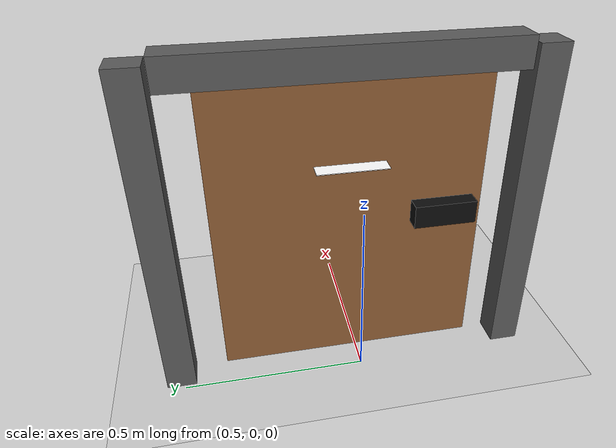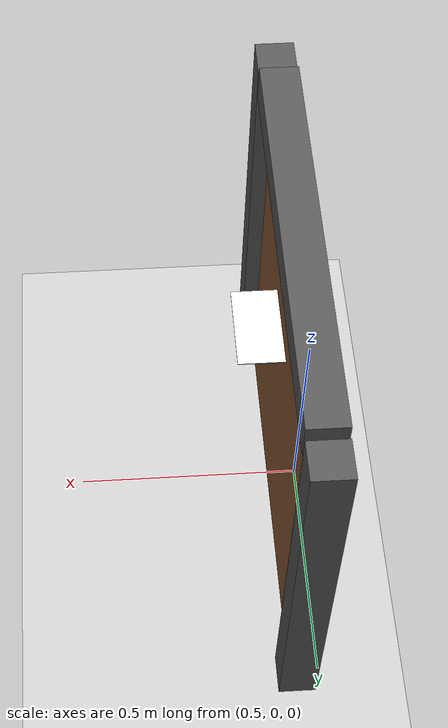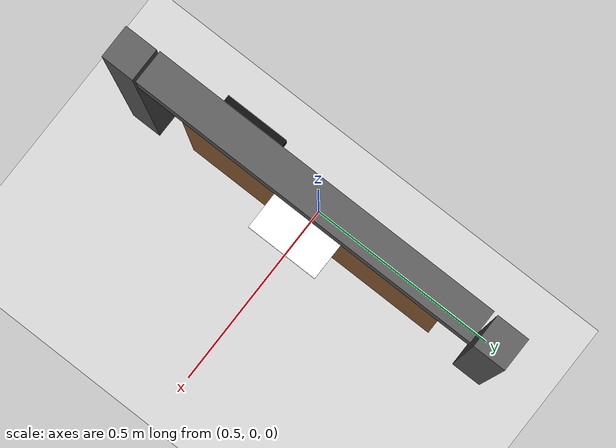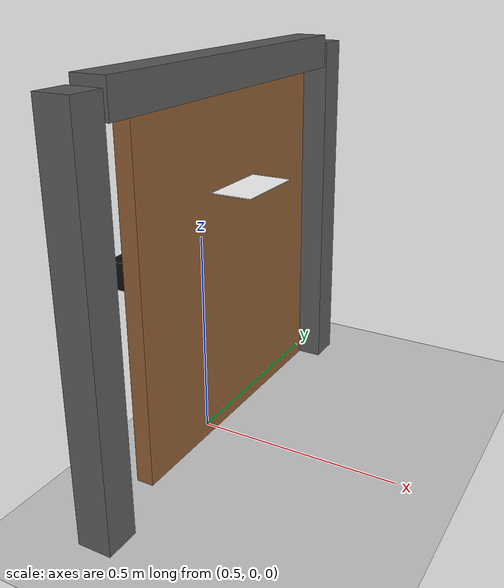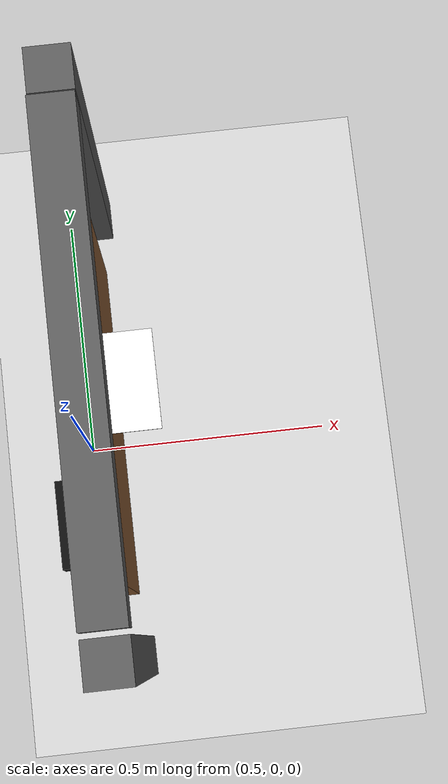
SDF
<?xml version="1.0" ?>
<sdf version='1.6'>
  <world name='door_tag'>

    <physics type='ode'>
      <max_step_size>0.0002</max_step_size>
      <real_time_factor>1</real_time_factor>
      <real_time_update_rate>5000</real_time_update_rate>
      <gravity>0 0 -9.81</gravity>
      <ode>
        <solver>
          <type>quick</type>
          <iters>50</iters>
          <sor>1.3</sor>
        </solver>
        <constraints>
          <cfm>0.0</cfm>
          <erp>0.2</erp>
          <contact_max_correcting_vel>10.0</contact_max_correcting_vel>
          <contact_surface_layer>0.001</contact_surface_layer>
        </constraints>
      </ode>
    </physics>

    <plugin name="ros_link_attacher_plugin" filename="libgazebo_ros_link_attacher.so"/>

    <spherical_coordinates>
      <surface_model>EARTH_WGS84</surface_model>
      <latitude_deg>0</latitude_deg>
      <longitude_deg>0</longitude_deg>
      <elevation>0</elevation>
      <heading_deg>0</heading_deg>
    </spherical_coordinates>

    <scene>
      <sky>
        <clouds>
          <speed>12</speed>
        </clouds>
      </sky>
    </scene>

    <light name='sun_no_shadow' type='directional'>
      <cast_shadows>false</cast_shadows>
      <pose>0 0 10 0 0 0</pose>
      <diffuse>0.8 0.8 0.8 1</diffuse>
      <specular>0.2 0.2 0.2 1</specular>
      <attenuation>
        <range>1000</range>
        <constant>0.9</constant>
        <linear>0.01</linear>
        <quadratic>0.001</quadratic>
      </attenuation>
      <direction>-0.5 0.5 -1</direction>
    </light>

    <include>
      <uri>model://ground_plane</uri>
    </include>

    <model name='hinged_door_with_tag'>
      <pose>0.55 0.03 0 0 0 3.14159</pose>
      <static>false</static>

      <link name='door_frame'>
        <pose>0 0 0.45 0 0 0</pose>
        <inertial>
          <mass>1000.0</mass>
          <inertia>
            <ixx>100.0</ixx>
            <iyy>100.0</iyy>
            <izz>100.0</izz>
            <ixy>0.0</ixy>
            <ixz>0.0</ixz>
            <iyz>0.0</iyz>
          </inertia>
        </inertial>

        <collision name='left_post_collision'>
          <pose>0 -0.48 0 0 0 0</pose>
          <geometry><box><size>0.08 0.08 0.90</size></box></geometry>
        </collision>
        <visual name='left_post_visual'>
          <pose>0 -0.48 0 0 0 0</pose>
          <geometry><box><size>0.08 0.08 0.90</size></box></geometry>
          <material><ambient>0.35 0.35 0.35 1</ambient><diffuse>0.35 0.35 0.35 1</diffuse></material>
        </visual>

        <collision name='right_post_collision'>
          <pose>0 0.48 0 0 0 0</pose>
          <geometry><box><size>0.08 0.08 0.90</size></box></geometry>
        </collision>
        <visual name='right_post_visual'>
          <pose>0 0.48 0 0 0 0</pose>
          <geometry><box><size>0.08 0.08 0.90</size></box></geometry>
          <material><ambient>0.35 0.35 0.35 1</ambient><diffuse>0.35 0.35 0.35 1</diffuse></material>
        </visual>

        <collision name='top_bar_collision'>
          <pose>0 0 0.43 0 0 0</pose>
          <geometry><box><size>0.08 0.86 0.08</size></box></geometry>
        </collision>
        <visual name='top_bar_visual'>
          <pose>0 0 0.43 0 0 0</pose>
          <geometry><box><size>0.08 0.86 0.08</size></box></geometry>
          <material><ambient>0.35 0.35 0.35 1</ambient><diffuse>0.35 0.35 0.35 1</diffuse></material>
        </visual>
      </link>

      <link name='door_panel'>
        <pose>0 -0.35 0.45 0 0 0</pose>
        <inertial>
          <pose>0 0.35 0 0 0 0</pose>
          <mass>2.0</mass>
          <inertia>
            <ixx>0.167</ixx>
            <iyy>0.003</iyy>
            <izz>0.107</izz>
            <ixy>0.0</ixy>
            <ixz>0.0</ixz>
            <iyz>0.0</iyz>
          </inertia>
        </inertial>

        <collision name='panel_collision'>
          <pose>0 0.35 0 0 0 0</pose>
          <geometry><box><size>0.04 0.70 0.80</size></box></geometry>
          <surface>
            <friction><ode><mu>0.8</mu><mu2>0.8</mu2></ode></friction>
          </surface>
        </collision>
        <visual name='panel_visual'>
          <pose>0 0.35 0 0 0 0</pose>
          <geometry><box><size>0.04 0.70 0.80</size></box></geometry>
          <material><ambient>0.55 0.36 0.20 1</ambient><diffuse>0.55 0.36 0.20 1</diffuse></material>
        </visual>

        <visual name='door_tag_visual'>
          <pose>-0.026 0.35 0.18 0 1.5708 0</pose>
          <geometry><box><size>0.002 0.18 0.18</size></box></geometry>
          <material><ambient>1 1 1 1</ambient><diffuse>1 1 1 1</diffuse></material>
        </visual>
      </link>

      <link name='door_handle'>
        <pose>0.07 0.23 0.50 0 1.5708 0</pose>
        <inertial>
          <mass>0.08</mass>
          <inertia>
            <ixx>0.00018</ixx>
            <iyy>0.00004</iyy>
            <izz>0.00019</izz>
            <ixy>0.0</ixy>
            <ixz>0.0</ixz>
            <iyz>0.0</iyz>
          </inertia>
        </inertial>
        <collision name='handle_collision'>
          <pose>0 0 0 0 0 0</pose>
          <geometry><box><size>0.06 0.16 0.04</size></box></geometry>
        </collision>
        <visual name='handle_visual'>
          <pose>0 0 0 0 0 0</pose>
          <geometry><box><size>0.06 0.16 0.04</size></box></geometry>
          <material><ambient>0.05 0.05 0.05 1</ambient><diffuse>0.05 0.05 0.05 1</diffuse></material>
        </visual>
      </link>

      <joint name='frame_to_world' type='fixed'>
        <parent>world</parent>
        <child>door_frame</child>
      </joint>

      <joint name='door_hinge' type='revolute'>
        <parent>door_frame</parent>
        <child>door_panel</child>
        <pose>0 0 0 0 0 0</pose>
        <axis>
          <xyz>0 0 1</xyz>
          <limit>
            <lower>-0.10</lower>
            <upper>2.60</upper>
            <effort>20.0</effort>
            <velocity>4.0</velocity>
          </limit>
          <dynamics>
            <damping>1.4</damping>
            <friction>0.2</friction>
          </dynamics>
        </axis>
      </joint>

      <joint name='handle_hinge' type='revolute'>
        <parent>door_panel</parent>
        <child>door_handle</child>
        <pose>0 0 0 0 0 0</pose>
        <axis>
          <xyz>0 0 1</xyz>
          <limit>
            <lower>-1.5708</lower>
            <upper>1.5708</upper>
            <effort>2.0</effort>
            <velocity>4.0</velocity>
          </limit>
          <dynamics>
            <damping>0.01</damping>
            <friction>0.0</friction>
          </dynamics>
        </axis>
      </joint>
    </model>

  </world>
</sdf>
